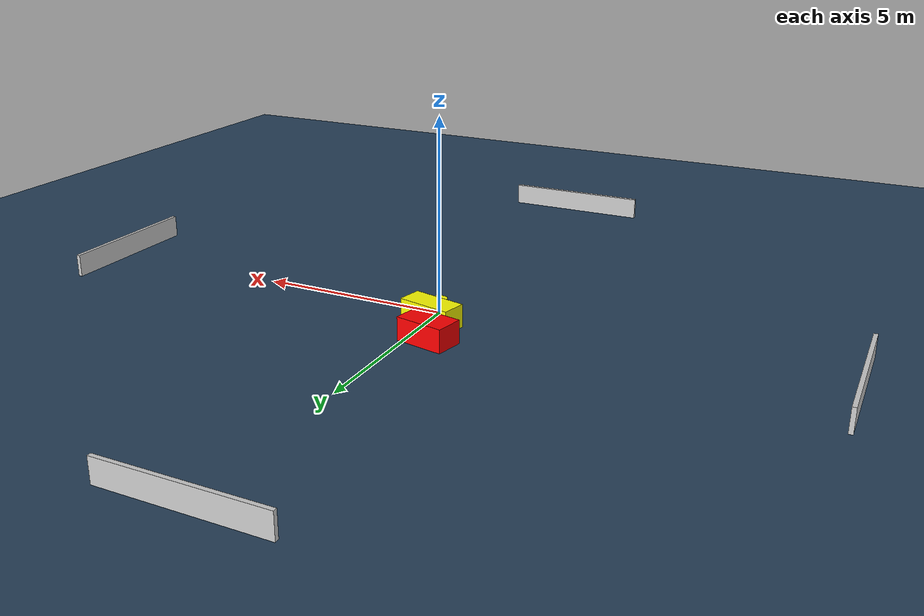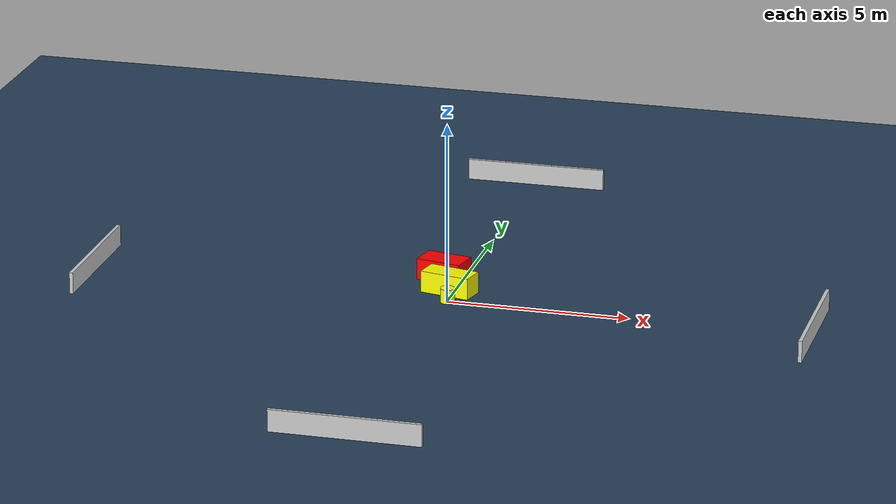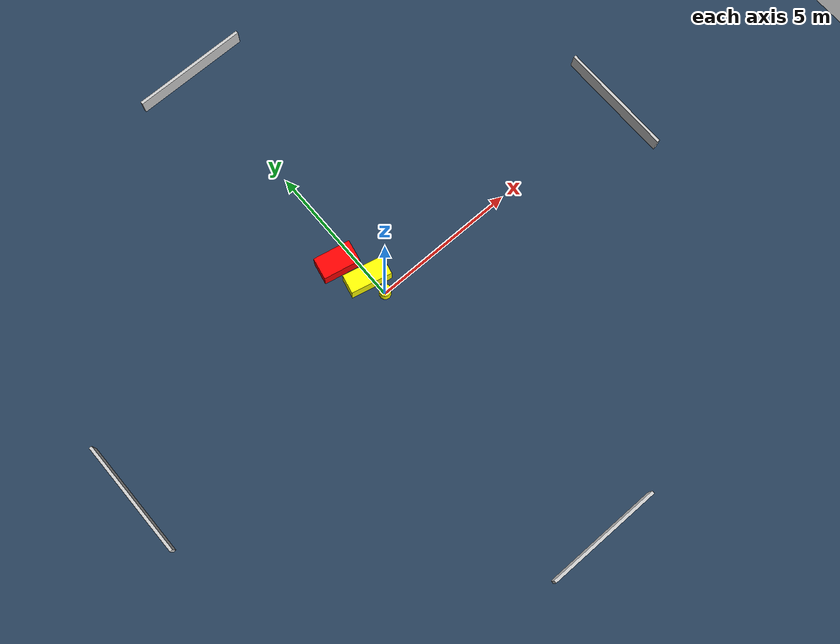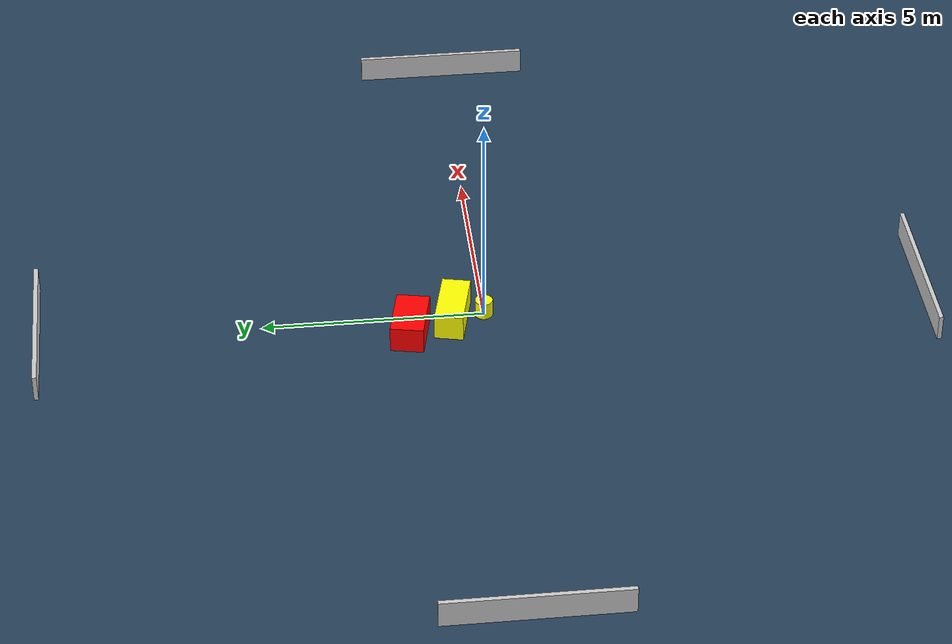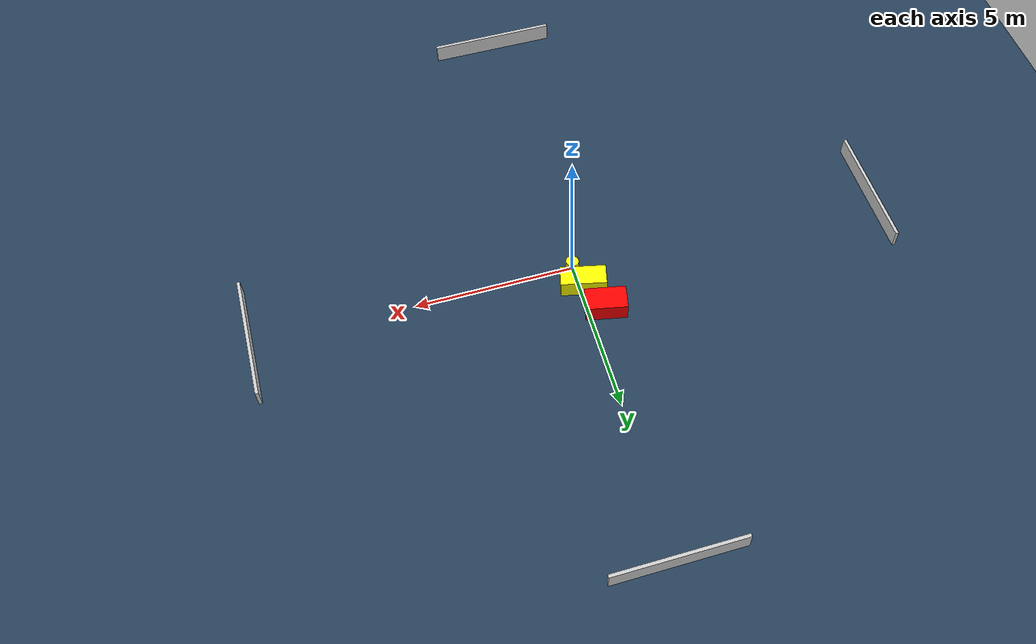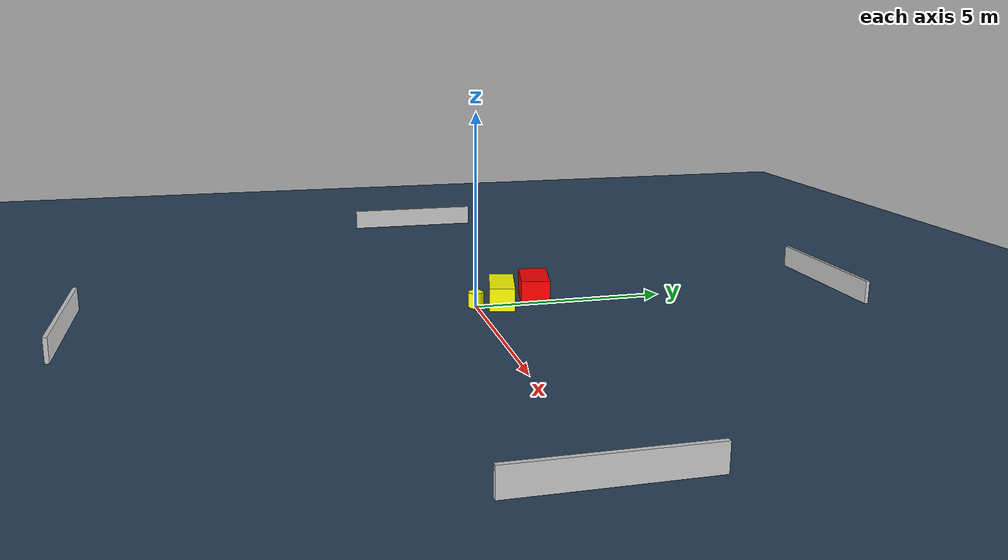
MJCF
<?xml version="1.0" ?>
<mujoco model="generated_environment">
  <option timestep="0.01" integrator="RK4" cone="elliptic"/>
  <default>
    <geom density="1"/>
  </default>
  <asset>
    <texture builtin="gradient" height="3072" name="skybox" rgb1="0.3 0.5 0.7" rgb2="0 0 0" type="skybox" width="512"/>
    <texture builtin="checker" height="300" name="groundplane" rgb1="0.2 0.3 0.4" rgb2="0.1 0.2 0.3" type="2d" width="300"/>
    <material name="groundplane" reflectance="0.2" texrepeat="5 5" texture="groundplane"/>
  </asset>
  <worldbody>
    <light dir="0 0 -1" directional="true" pos="0 0 1.5"/>
    <geom condim="3" friction="0.5 0.005 0.001" material="groundplane" name="floor" pos="0 0 0" size="0 0 0.05" type="plane"/>
    <body name="walls">
      <geom name="wall_1" condim="4" pos="-10.0 0.0 0.3" rgba="0.800000011920929 0.800000011920929 0.800000011920929 1.0" size="0.05 2.0 0.3" type="box"/>
      <geom name="wall_2" condim="4" pos="10.0 0.0 0.3" rgba="0.800000011920929 0.800000011920929 0.800000011920929 1.0" size="0.05 2.0 0.3" type="box"/>
      <geom name="wall_3" condim="4" pos="0.0 -10.0 0.3" rgba="0.800000011920929 0.800000011920929 0.800000011920929 1.0" size="2.0 0.05 0.3" type="box"/>
      <geom name="wall_4" condim="4" pos="0.0 10.0 0.3" rgba="0.800000011920929 0.800000011920929 0.800000011920929 1.0" size="2.0 0.05 0.3" type="box"/>
    </body>
    <body name="robot">
      <joint name="joint_x" type="slide" pos="0 0 0" axis="1 0 0"/>
      <joint name="joint_y" type="slide" pos="0 0 0" axis="0 1 0"/>
      <geom name="robot" type="cylinder" pos="0.0 0.0 0.2" size="0.2 0.2 0.0" mass="5.0" friction="1.0 0.005 0.0001" condim="4" rgba="1.0 1.0 0.0 1.0"/>
    </body>
    <body name="obstacle_1_movable">
      <geom name="obstacle_1_movable" condim="4" pos="-0.13418435914833257 0.7167484984435558 0.3" euler="0 0 167.18157146714177" friction="0.0 0.005 0.001" rgba="1.0 1.0 0.0 1.0" size="0.7077500027865058 0.32361309135714755 0.3" type="box" mass="0.1"/>
      <joint type="free"/>
    </body>
    <body name="obstacle_2_static">
      <geom name="obstacle_2_static" condim="4" pos="-0.5516789313778201 1.7106371402827958 0.3" euler="0 0 168.3690520225801" friction="0.0 0.005 0.001" rgba="1.0 0.0 0.0 1.0" size="0.6362961961955877 0.3746601878077166 0.3" type="box"/>
    </body>
  </worldbody>
  <actuator>
    <motor name="actuator_x" joint="joint_x" gear="1" ctrlrange="-1 1"/>
    <motor name="actuator_y" joint="joint_y" gear="1" ctrlrange="-1 1"/>
  </actuator>
</mujoco>
